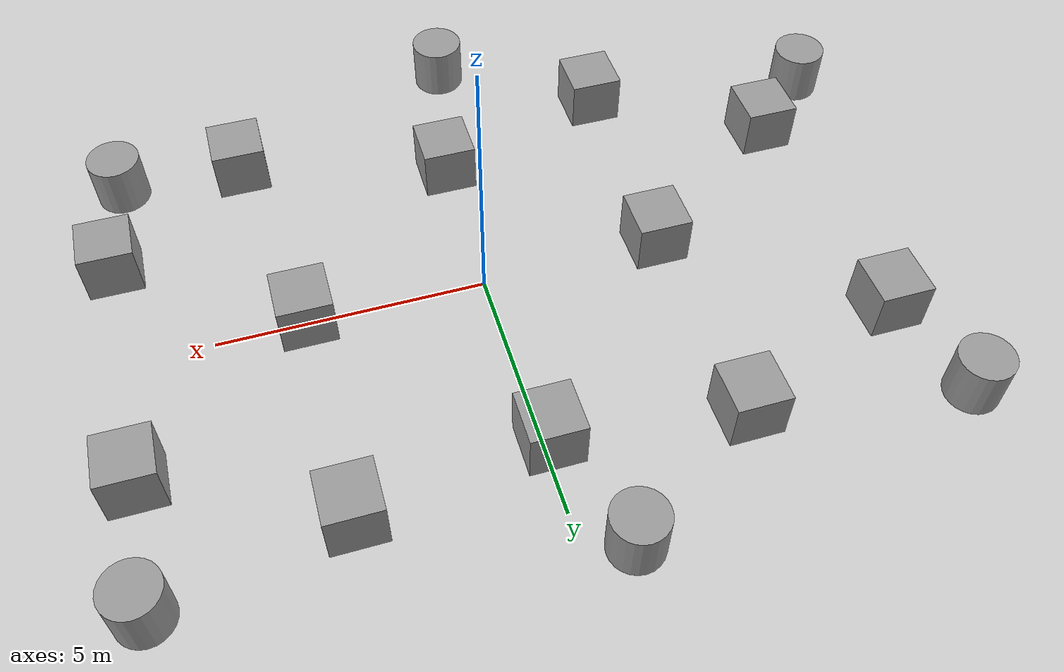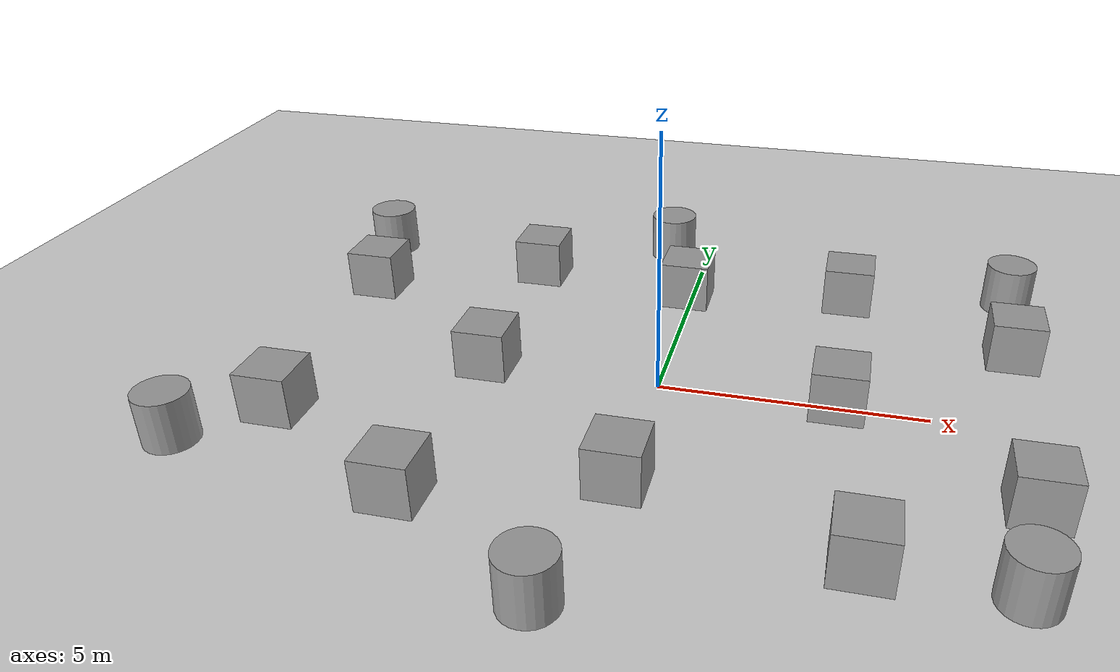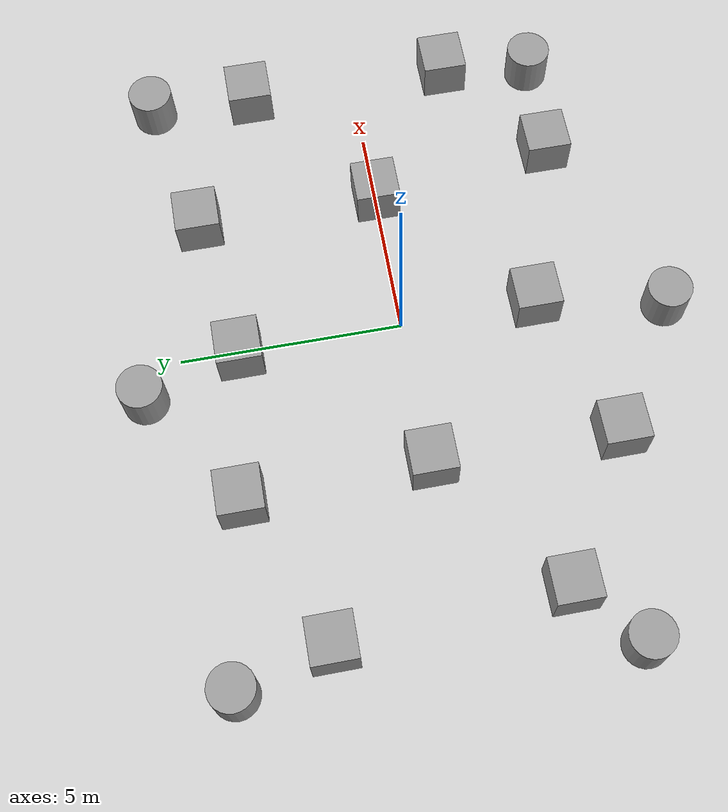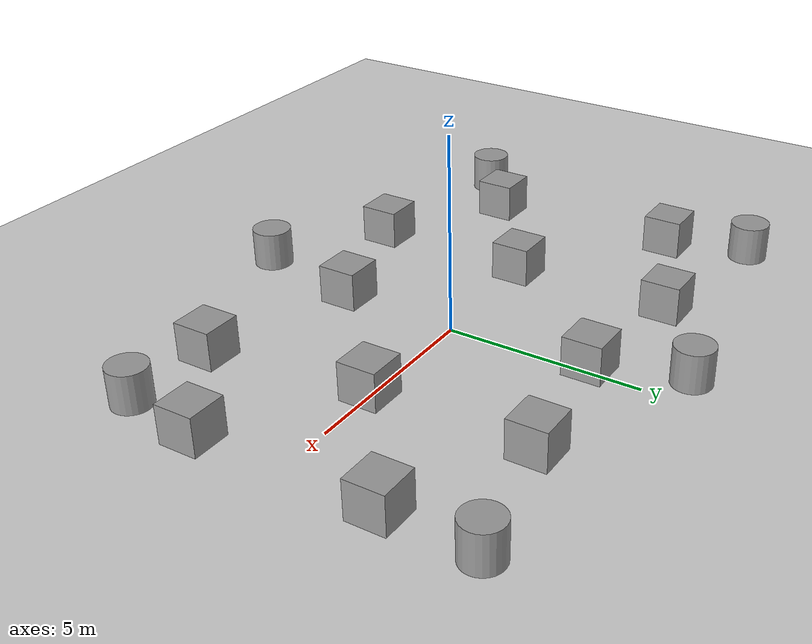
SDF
<sdf version="1.7">
 <world name="default">
  <model name="ground_plane">
   <static>1</static>
   <link name="link">
    <collision name="collision">
     <geometry><plane><normal>0 0 1</normal><size>100 100</size></plane></geometry>
     <surface><friction><ode><mu>100</mu><mu2>50</mu2></ode></friction></surface>
    </collision>
    <visual name="visual">
     <cast_shadows>0</cast_shadows>
     <geometry><plane><normal>0 0 1</normal><size>100 100</size></plane></geometry>
     <material>
      <script><uri>file://media/materials/scripts/gazebo.material</uri><name>Gazebo/Grey</name></script>
     </material>
    </visual>
   </link>
  </model>
  <light name="sun" type="directional">
   <pose>0 0 10 0 -0 0</pose>
   <diffuse>0.8 0.8 0.8 1</diffuse>
   <specular>0.2 0.2 0.2 1</specular>
   <attenuation>
    <range>1000</range>
    <constant>0.9</constant>
    <linear>0.01</linear>
    <quadratic>0.001</quadratic>
   </attenuation>
   <direction>-0.5 0.1 -0.9</direction>
   <spot><inner_angle>0</inner_angle><outer_angle>0</outer_angle><falloff>0</falloff></spot>
  </light>
  <scene><shadows>0</shadows><ambient>0.4 0.4 0.4 1</ambient><background>0.7 0.7 0.7 1</background></scene>
  <physics type="ode">
   <real_time_update_rate>1000</real_time_update_rate>
   <max_step_size>0.001</max_step_size>
   <real_time_factor>1</real_time_factor>
   <ode>
    <solver>
     <type>quick</type>
     <iters>150</iters>
     <precon_iters>0</precon_iters>
     <sor>1.4</sor>
     <use_dynamic_moi_rescaling>1</use_dynamic_moi_rescaling>
    </solver>
    <constraints>
     <cfm>1e-05</cfm>
     <erp>0.2</erp>
     <contact_max_correcting_vel>2000</contact_max_correcting_vel>
     <contact_surface_layer>0.01</contact_surface_layer>
    </constraints>
   </ode>
  </physics>
  <gravity>0 0 -9.8</gravity>
  <magnetic_field>6e-06 2.3e-05 -4.2e-05</magnetic_field>
  <atmosphere type="adiabatic"/>
  <audio><device>default</device></audio>
  <spherical_coordinates>
   <surface_model>EARTH_WGS84</surface_model>
   <latitude_deg>0</latitude_deg>
   <longitude_deg>0</longitude_deg>
   <elevation>0</elevation>
   <heading_deg>0</heading_deg>
  </spherical_coordinates>
  <model name="unit_box">
   <pose>3.33631 -0.010764 0.5 0 -0 0</pose>
   <link name="link">
    <inertial>
     <mass>1</mass>
     <inertia>
      <ixx>0.166667</ixx>
      <ixy>0</ixy>
      <ixz>0</ixz>
      <iyy>0.166667</iyy>
      <iyz>0</iyz>
      <izz>0.166667</izz>
     </inertia>
    </inertial>
    <collision name="collision"><geometry><box><size>1 1 1</size></box></geometry></collision>
    <visual name="visual">
     <geometry><box><size>1 1 1</size></box></geometry>
     <material>
      <script><name>Gazebo/Grey</name><uri>file://media/materials/scripts/gazebo.material</uri></script>
     </material>
    </visual>
   </link>
  </model>
  <model name="unit_box_0">
   <pose>-0.113326 3.66049 0.5 0 -0 0</pose>
   <link name="link">
    <inertial>
     <mass>1</mass>
     <inertia>
      <ixx>0.166667</ixx>
      <ixy>0</ixy>
      <ixz>0</ixz>
      <iyy>0.166667</iyy>
      <iyz>0</iyz>
      <izz>0.166667</izz>
     </inertia>
    </inertial>
    <collision name="collision"><geometry><box><size>1 1 1</size></box></geometry></collision>
    <visual name="visual">
     <geometry><box><size>1 1 1</size></box></geometry>
     <material>
      <script><name>Gazebo/Grey</name><uri>file://media/materials/scripts/gazebo.material</uri></script>
     </material>
    </visual>
   </link>
  </model>
  <model name="unit_box_1">
   <pose>-0.027805 -3.04389 0.5 0 -0 0</pose>
   <link name="link">
    <inertial>
     <mass>1</mass>
     <inertia>
      <ixx>0.166667</ixx>
      <ixy>0</ixy>
      <ixz>0</ixz>
      <iyy>0.166667</iyy>
      <iyz>0</iyz>
      <izz>0.166667</izz>
     </inertia>
    </inertial>
    <collision name="collision"><geometry><box><size>1 1 1</size></box></geometry></collision>
    <visual name="visual">
     <geometry><box><size>1 1 1</size></box></geometry>
     <material>
      <script><name>Gazebo/Grey</name><uri>file://media/materials/scripts/gazebo.material</uri></script>
     </material>
    </visual>
   </link>
  </model>
  <model name="unit_box_2">
   <pose>-3.37238 -0.031522 0.5 0 -0 0</pose>
   <link name="link">
    <inertial>
     <mass>1</mass>
     <inertia>
      <ixx>0.166667</ixx>
      <ixy>0</ixy>
      <ixz>0</ixz>
      <iyy>0.166667</iyy>
      <iyz>0</iyz>
      <izz>0.166667</izz>
     </inertia>
    </inertial>
    <collision name="collision"><geometry><box><size>1 1 1</size></box></geometry></collision>
    <visual name="visual">
     <geometry><box><size>1 1 1</size></box></geometry>
     <material>
      <script><name>Gazebo/Grey</name><uri>file://media/materials/scripts/gazebo.material</uri></script>
     </material>
    </visual>
   </link>
  </model>
  <model name="unit_box_3">
   <pose>-3.4457 -4.1624 0.5 0 -0 0</pose>
   <link name="link">
    <inertial>
     <mass>1</mass>
     <inertia>
      <ixx>0.166667</ixx>
      <ixy>0</ixy>
      <ixz>0</ixz>
      <iyy>0.166667</iyy>
      <iyz>0</iyz>
      <izz>0.166667</izz>
     </inertia>
    </inertial>
    <collision name="collision"><geometry><box><size>1 1 1</size></box></geometry></collision>
    <visual name="visual">
     <geometry><box><size>1 1 1</size></box></geometry>
     <material>
      <script><name>Gazebo/Grey</name><uri>file://media/materials/scripts/gazebo.material</uri></script>
     </material>
    </visual>
   </link>
  </model>
  <model name="unit_box_4">
   <pose>-3.49387 4.06669 0.5 0 -0 0</pose>
   <link name="link">
    <inertial>
     <mass>1</mass>
     <inertia>
      <ixx>0.166667</ixx>
      <ixy>0</ixy>
      <ixz>0</ixz>
      <iyy>0.166667</iyy>
      <iyz>0</iyz>
      <izz>0.166667</izz>
     </inertia>
    </inertial>
    <collision name="collision"><geometry><box><size>1 1 1</size></box></geometry></collision>
    <visual name="visual">
     <geometry><box><size>1 1 1</size></box></geometry>
     <material>
      <script><name>Gazebo/Grey</name><uri>file://media/materials/scripts/gazebo.material</uri></script>
     </material>
    </visual>
   </link>
  </model>
  <model name="unit_box_5">
   <pose>3.3055 4.15863 0.5 0 -0 0</pose>
   <link name="link">
    <inertial>
     <mass>1</mass>
     <inertia>
      <ixx>0.166667</ixx>
      <ixy>0</ixy>
      <ixz>0</ixz>
      <iyy>0.166667</iyy>
      <iyz>0</iyz>
      <izz>0.166667</izz>
     </inertia>
    </inertial>
    <collision name="collision"><geometry><box><size>1 1 1</size></box></geometry></collision>
    <visual name="visual">
     <geometry><box><size>1 1 1</size></box></geometry>
     <material>
      <script><name>Gazebo/Grey</name><uri>file://media/materials/scripts/gazebo.material</uri></script>
     </material>
    </visual>
   </link>
  </model>
  <model name="unit_box_6">
   <pose>3.92133 -4.17116 0.5 0 -0 0</pose>
   <link name="link">
    <inertial>
     <mass>1</mass>
     <inertia>
      <ixx>0.166667</ixx>
      <ixy>0</ixy>
      <ixz>0</ixz>
      <iyy>0.166667</iyy>
      <iyz>0</iyz>
      <izz>0.166667</izz>
     </inertia>
    </inertial>
    <collision name="collision"><geometry><box><size>1 1 1</size></box></geometry></collision>
    <visual name="visual">
     <geometry><box><size>1 1 1</size></box></geometry>
     <material>
      <script><name>Gazebo/Grey</name><uri>file://media/materials/scripts/gazebo.material</uri></script>
     </material>
    </visual>
   </link>
  </model>
  <model name="unit_box_7">
   <pose>6.57846 -2.21574 0.5 0 -0 0</pose>
   <link name="link">
    <inertial>
     <mass>1</mass>
     <inertia>
      <ixx>0.166667</ixx>
      <ixy>0</ixy>
      <ixz>0</ixz>
      <iyy>0.166667</iyy>
      <iyz>0</iyz>
      <izz>0.166667</izz>
     </inertia>
    </inertial>
    <collision name="collision"><geometry><box><size>1 1 1</size></box></geometry></collision>
    <visual name="visual">
     <geometry><box><size>1 1 1</size></box></geometry>
     <material>
      <script><name>Gazebo/Grey</name><uri>file://media/materials/scripts/gazebo.material</uri></script>
     </material>
    </visual>
   </link>
  </model>
  <model name="unit_box_8">
   <pose>6.5758 2.5192 0.5 0 -0 0</pose>
   <link name="link">
    <inertial>
     <mass>1</mass>
     <inertia>
      <ixx>0.166667</ixx>
      <ixy>0</ixy>
      <ixz>0</ixz>
      <iyy>0.166667</iyy>
      <iyz>0</iyz>
      <izz>0.166667</izz>
     </inertia>
    </inertial>
    <collision name="collision"><geometry><box><size>1 1 1</size></box></geometry></collision>
    <visual name="visual">
     <geometry><box><size>1 1 1</size></box></geometry>
     <material>
      <script><name>Gazebo/Grey</name><uri>file://media/materials/scripts/gazebo.material</uri></script>
     </material>
    </visual>
   </link>
  </model>
  <model name="unit_box_9">
   <pose>-6.85162 2.66509 0.5 0 -0 0</pose>
   <link name="link">
    <inertial>
     <mass>1</mass>
     <inertia>
      <ixx>0.166667</ixx>
      <ixy>0</ixy>
      <ixz>0</ixz>
      <iyy>0.166667</iyy>
      <iyz>0</iyz>
      <izz>0.166667</izz>
     </inertia>
    </inertial>
    <collision name="collision"><geometry><box><size>1 1 1</size></box></geometry></collision>
    <visual name="visual">
     <geometry><box><size>1 1 1</size></box></geometry>
     <material>
      <script><name>Gazebo/Grey</name><uri>file://media/materials/scripts/gazebo.material</uri></script>
     </material>
    </visual>
   </link>
  </model>
  <model name="unit_box_10">
   <pose>-6.55748 -2.34067 0.5 0 -0 0</pose>
   <link name="link">
    <inertial>
     <mass>1</mass>
     <inertia>
      <ixx>0.166667</ixx>
      <ixy>0</ixy>
      <ixz>0</ixz>
      <iyy>0.166667</iyy>
      <iyz>0</iyz>
      <izz>0.166667</izz>
     </inertia>
    </inertial>
    <collision name="collision"><geometry><box><size>1 1 1</size></box></geometry></collision>
    <visual name="visual">
     <geometry><box><size>1 1 1</size></box></geometry>
     <material>
      <script><name>Gazebo/Grey</name><uri>file://media/materials/scripts/gazebo.material</uri></script>
     </material>
    </visual>
   </link>
  </model>
  <model name="unit_cylinder">
   <pose>6.2571 -4.28995 0.499993 4e-06 4e-06 -0</pose>
   <link name="link">
    <inertial>
     <mass>1</mass>
     <inertia><ixx>0.145833</ixx><ixy>0</ixy><ixz>0</ixz><iyy>0.145833</iyy><iyz>0</iyz><izz>0.125</izz></inertia>
    </inertial>
    <collision name="collision">
     <geometry><cylinder><radius>0.5</radius><length>1</length></cylinder></geometry>
    </collision>
    <visual name="visual">
     <geometry><cylinder><radius>0.5</radius><length>1</length></cylinder></geometry>
     <material>
      <script><name>Gazebo/Grey</name><uri>file://media/materials/scripts/gazebo.material</uri></script>
     </material>
    </visual>
   </link>
  </model>
  <model name="unit_cylinder_0">
   <pose>6.63906 4.84612 0.499997 -4e-06 -4e-06 -0</pose>
   <link name="link">
    <inertial>
     <mass>1</mass>
     <inertia><ixx>0.145833</ixx><ixy>0</ixy><ixz>0</ixz><iyy>0.145833</iyy><iyz>0</iyz><izz>0.125</izz></inertia>
    </inertial>
    <collision name="collision">
     <geometry><cylinder><radius>0.5</radius><length>1</length></cylinder></geometry>
    </collision>
    <visual name="visual">
     <geometry><cylinder><radius>0.5</radius><length>1</length></cylinder></geometry>
     <material>
      <script><name>Gazebo/Grey</name><uri>file://media/materials/scripts/gazebo.material</uri></script>
     </material>
    </visual>
   </link>
  </model>
  <model name="unit_cylinder_1">
   <pose>-7.44428 4.72101 0.499993 4e-06 4e-06 -0</pose>
   <link name="link">
    <inertial>
     <mass>1</mass>
     <inertia><ixx>0.145833</ixx><ixy>0</ixy><ixz>0</ixz><iyy>0.145833</iyy><iyz>0</iyz><izz>0.125</izz></inertia>
    </inertial>
    <collision name="collision">
     <geometry><cylinder><radius>0.5</radius><length>1</length></cylinder></geometry>
    </collision>
    <visual name="visual">
     <geometry><cylinder><radius>0.5</radius><length>1</length></cylinder></geometry>
     <material>
      <script><name>Gazebo/Grey</name><uri>file://media/materials/scripts/gazebo.material</uri></script>
     </material>
    </visual>
   </link>
  </model>
  <model name="unit_cylinder_2">
   <pose>-7.9367 -3.55644 0.499997 -4e-06 -4e-06 -0</pose>
   <link name="link">
    <inertial>
     <mass>1</mass>
     <inertia><ixx>0.145833</ixx><ixy>0</ixy><ixz>0</ixz><iyy>0.145833</iyy><iyz>0</iyz><izz>0.125</izz></inertia>
    </inertial>
    <collision name="collision">
     <geometry><cylinder><radius>0.5</radius><length>1</length></cylinder></geometry>
    </collision>
    <visual name="visual">
     <geometry><cylinder><radius>0.5</radius><length>1</length></cylinder></geometry>
     <material>
      <script><name>Gazebo/Grey</name><uri>file://media/materials/scripts/gazebo.material</uri></script>
     </material>
    </visual>
   </link>
  </model>
  <model name="unit_cylinder_3">
   <pose>-0.845236 5.83975 0.499993 4e-06 4e-06 -0</pose>
   <link name="link">
    <inertial>
     <mass>1</mass>
     <inertia><ixx>0.145833</ixx><ixy>0</ixy><ixz>0</ixz><iyy>0.145833</iyy><iyz>0</iyz><izz>0.125</izz></inertia>
    </inertial>
    <collision name="collision">
     <geometry><cylinder><radius>0.5</radius><length>1</length></cylinder></geometry>
    </collision>
    <visual name="visual">
     <geometry><cylinder><radius>0.5</radius><length>1</length></cylinder></geometry>
     <material>
      <script><name>Gazebo/Grey</name><uri>file://media/materials/scripts/gazebo.material</uri></script>
     </material>
    </visual>
   </link>
  </model>
  <model name="unit_cylinder_4">
   <pose>-0.606909 -5.94327 0.499997 -4e-06 -4e-06 -0</pose>
   <link name="link">
    <inertial>
     <mass>1</mass>
     <inertia><ixx>0.145833</ixx><ixy>0</ixy><ixz>0</ixz><iyy>0.145833</iyy><iyz>0</iyz><izz>0.125</izz></inertia>
    </inertial>
    <collision name="collision">
     <geometry><cylinder><radius>0.5</radius><length>1</length></cylinder></geometry>
    </collision>
    <visual name="visual">
     <geometry><cylinder><radius>0.5</radius><length>1</length></cylinder></geometry>
     <material>
      <script><name>Gazebo/Grey</name><uri>file://media/materials/scripts/gazebo.material</uri></script>
     </material>
    </visual>
   </link>
  </model>
 </world>
</sdf>
